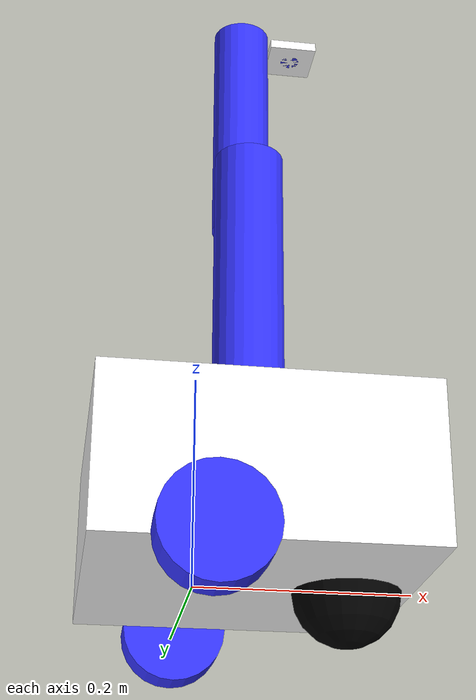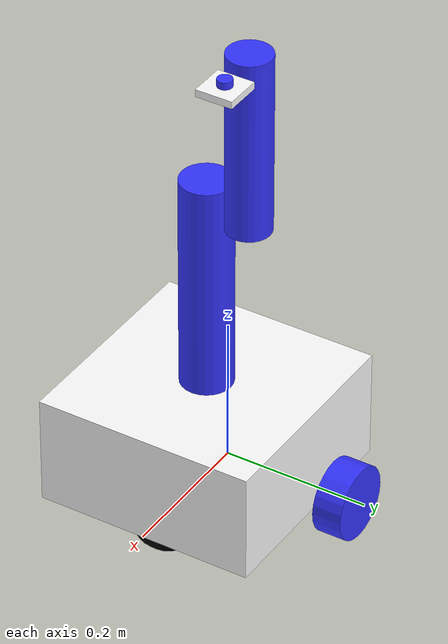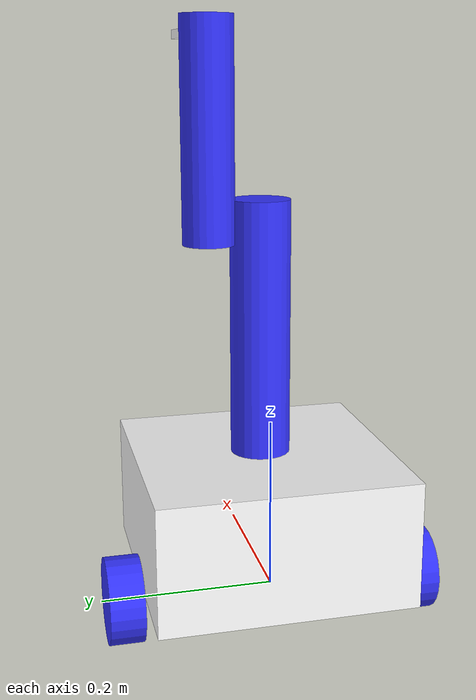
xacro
<?xml version="1.0"?>
<robot xmlns:xacro="http://www.ros.org/wiki/xacro">

    <xacro:include filename="inertial_macros.xacro" />

    <material name="white">
    <color rgba="1 1 1 1"/>
    </material>

    <material name="orange">
        <color rgba="1 0.3 0.1 1"/>
    </material>

    <material name="blue">
        <color rgba="0.2 0.2 1 1"/>
    </material>

    <material name="black">
        <color rgba="0 0 0 1"/>
    </material>

    <!-- ====================== ROS2 EVAL 4 ==== Sakthi Swaroopan ===================== -->

    <link name="base_link">
    </link>

    <!-- CHASIS -->

    <joint name="chassis_joint" type="fixed">
        <parent link="base_link"/>
        <child link="chassis"/>
        <origin xyz="-0.1 0 0"/>
    </joint>

    <link name="chassis">
        <visual>
            <origin xyz="0.15 0 0.075" rpy="0 0 0"/>
            <geometry>
                <box size="0.3 0.3 0.15"/>
            </geometry>
            <material name="white"/>
        </visual>
    </link>

    <!-- LEFT WHEEL -->

    <joint name="left_wheel_joint" type="continuous">
        <parent link="base_link"/>
        <child link="left_wheel"/>
        <origin xyz="0 0.175 0" rpy="-${pi/2} 0 0"/>
        <axis xyz="0 0 1"/>
    </joint>

    <link name="left_wheel">
        <visual>
            <geometry>
                <cylinder length="0.04" radius="0.05" />/>
            </geometry>
            <material name="blue"/>
        </visual>
    </link>

    <!-- RIGHT WHEEL -->

    <joint name="right_wheel_joint" type="continuous">
        <parent link="base_link"/>
        <child link="right_wheel"/>
        <origin xyz="0 -0.175 0" rpy="${pi/2} 0 0"/>
        <axis xyz="0 0 -1"/>
    </joint>

    <link name="right_wheel">
        <visual>
            <geometry>
                <cylinder length="0.04" radius="0.05" />/>
            </geometry>
            <material name="blue"/>
        </visual>
    </link>

    <!-- CASTER WHEEL -->

    <joint name="caster_wheel_joint" type="fixed">
        <parent link="chassis"/>
        <child link="caster_wheel"/>
        <origin xyz="0.24 0 0" rpy="0 0 0"/>
    </joint>

    <link name="caster_wheel">
        <visual>
            <geometry>
                <sphere radius="0.05" />
            </geometry>
            <material name="black"/>
        </visual>
    </link>

    <!-- COLUMN -->

    <joint name="column_joint" type="revolute">
        <parent link="base_link"/>
        <child link="column_link"/>
        <origin xyz="0.05 0 0.15" rpy="0 0 0"/>
        <axis xyz="0 0 1"/>
        <limit lower="0" upper="${(3*pi)/2}" velocity="100" effort="100"/>
    </joint>

    <link name="column_link">
        <visual>
            <origin xyz="0 0 0.15" rpy="0 0 0"/>
            <geometry>
                <cylinder length="0.3" radius="0.035" />
            </geometry>
            <material name="blue"/>
        </visual>
    </link>

    <!-- ARM -->

    <joint name="arm_joint" type="revolute">
        <parent link="column_link"/>
        <child link="arm_link"/>
        <origin xyz="0 0.06 0.25" rpy="0 0 0"/>
        <axis xyz="0 1 0"/>
        <limit lower="-${pi/2}" upper="0" velocity="100" effort="100"/>
    </joint>

    <link name="arm_link">
        <visual>
            <origin xyz="0 0 0.125" rpy="0 0 0"/>
            <geometry>
                <cylinder length="0.25" radius="0.03" />
            </geometry>
            <material name="blue"/>
        </visual>
    </link>

    <!-- Camera -->

    <joint name="camera_joint" type="fixed">
        <parent link="arm_link"/>
        <child link="camera_link"/>
        <origin xyz="0.03 0 0.23" rpy="0 ${pi/2} 0"/>
    </joint>

    <link name="camera_link">
        <visual>
            <origin xyz="0 0 0.025" rpy="0 0 0"/>
            <geometry>
                <box size="0.01 0.05 0.05" />
            </geometry>
            <material name="white" />
        </visual>
        <visual>
            <origin xyz="-0.005 0 0.025" rpy="0 ${pi/2} 0"/>
            <geometry>
                <cylinder length="0.02" radius="0.01" />
            </geometry>
            <material name="blue" />
        </visual>
    </link>

</robot>
